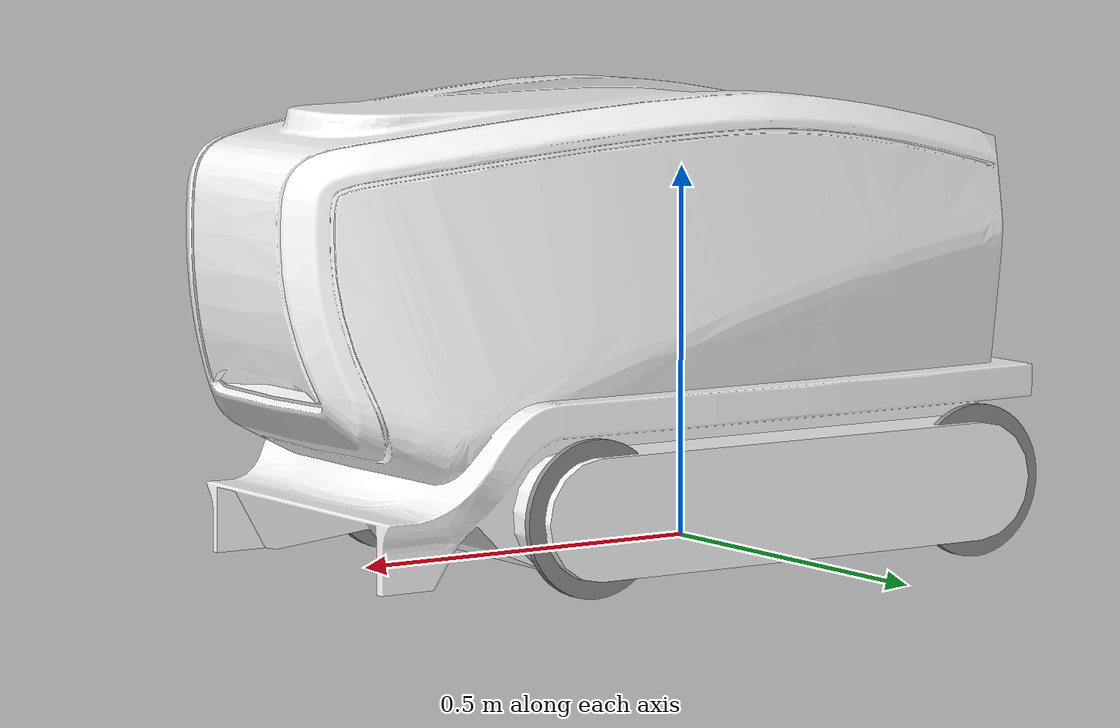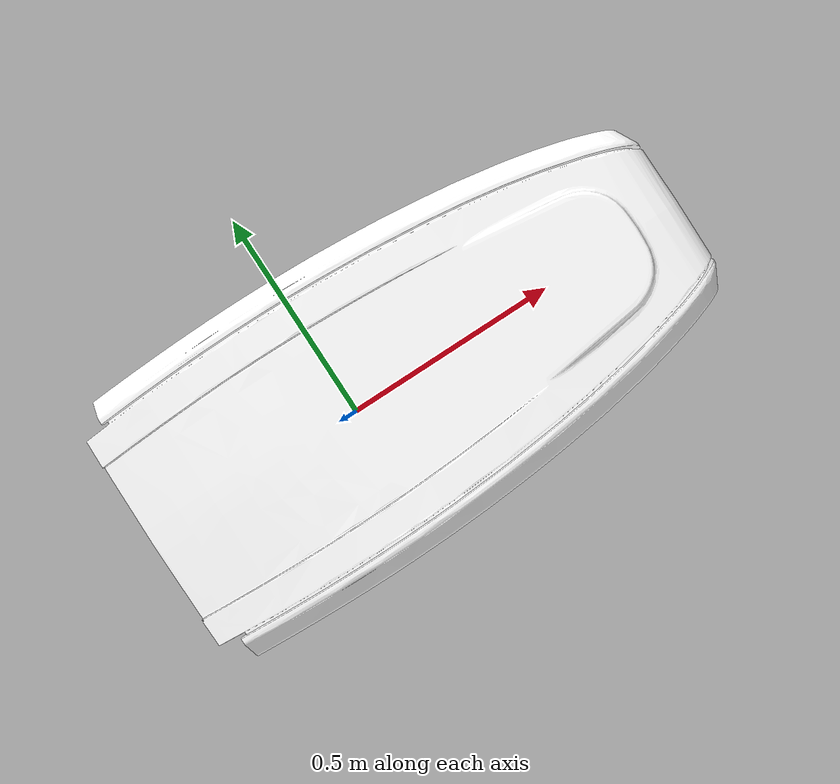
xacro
<?xml version="1.0"?>
<robot xmlns:xacro="http://www.ros.org/wiki/xacro">

  <!-- Включение файла с параметрами роликов -->
  <xacro:include filename="roller_params.xacro" />

  <link name="base_footprint"/>

  <!-- Базовое звено -->
  <link name="base_link">
    <inertial>
      <origin xyz="0.109332549621884 -3.99444698804471E-06 0.303288060337734" rpy="0 0 0"/>
      <mass value="7.5"/>
      <inertia ixx="13.4992891087176" ixy="0.000473313057343369" ixz="-1.40847406797442"
               iyy="29.2623362046841" iyz="0.00234656617180413" izz="27.4848319406113"/>
    </inertial>
    <visual>
      <origin xyz="0 0 0" rpy="0 0 0"/>
      <geometry>
        <mesh filename="file://$(find asump_description)/meshes/base_link.STL"/>
      </geometry>
      <material name=""><color rgba="1 1 1 1"/></material>
    </visual>
    <collision>
      <origin xyz="0 0 0" rpy="0 0 0"/>
      <geometry>
        <mesh filename="file://$(find asump_description)/meshes/base_link.STL"/>
      </geometry>
    </collision>
  </link>

  <joint name="base_joint" type="fixed">
    <origin xyz="0 0 0" rpy="0 0 0"/>
    <parent link="base_footprint"/>
    <child link="base_link"/>
    <axis xyz="0 0 0"/>
  </joint>

  <link name="balance_link">
    <inertial>
      <origin xyz="0 0 0" rpy="0 0 0"/>
      <mass value="3.2"/>
      <inertia ixx="13.4992891087176" ixy="0.000473313057343369" ixz="-1.40847406797442"
               iyy="29.2623362046841" iyz="0.00234656617180413" izz="27.4848319406113"/>
    </inertial>
  </link>

  <joint name="balance_joint" type="fixed">
    <origin xyz="0 0 0.25" rpy="0 0 0"/>
    <parent link="base_link"/>
    <child link="balance_link"/>
    <axis xyz="0 0 0"/>
  </joint>

  <!-- Траки -->

  <!-- Ролики -->
  <xacro:roller name="fl" x="0.30749" y="0.25132" z="0.079492" axis_x="0" axis_y="1" axis_z="0"/>
  <xacro:roller name="fr" x="0.30749" y="-0.25132" z="0.079492" axis_x="0" axis_y="1" axis_z="0"/>
  <xacro:roller name="rl" x="-0.30675" y="0.25132" z="0.079492" axis_x="0" axis_y="1" axis_z="0"/>
  <xacro:roller name="rr" x="-0.30675" y="-0.25132" z="0.079492" axis_x="0" axis_y="1" axis_z="0"/>

</robot>

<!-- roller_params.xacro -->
<robot xmlns:xacro="http://www.ros.org/wiki/xacro">

  <!-- Макрос для создания ролика -->
  <xacro:macro name="roller" params="name x y z axis_x axis_y axis_z">
    <link name="${name}_roller">
      <inertial>
        <origin xyz="0 -0.01 0" rpy="0 0 0"/>
        <mass value="1.2"/>
        <inertia ixx="0.00179016454216459" ixy="1.32679515530007E-36" ixz="1.04242882131926E-50"
                 iyy="0.00353589020904659" iyz="-3.27203986802643E-19" izz="0.00179016454216458"/>
      </inertial>
      <visual>
        <origin xyz="0 0 0" rpy="0 0 0"/>
        <geometry>
          <mesh filename="file://$(find asump_description)/meshes/${name}_roller.STL" scale="1 0.5 1"/>
        </geometry>
        <material name=""><color rgba="0.564705882352941 0.564705882352941 0.564705882352941 1"/></material>
      </visual>
      <collision>
        <origin xyz="0 0 0" rpy="0 0 0"/>
        <geometry>
          <mesh filename="file://$(find asump_description)/meshes/${name}_roller.STL" scale="1 0.5 1"/>
        </geometry>
      </collision>
    </link>

    <joint name="${name}_joint" type="continuous">
      <origin xyz="${x} ${y} ${z}" rpy="0 0 0"/>
      <parent link="base_link"/>
      <child link="${name}_roller"/>
      <axis xyz="${axis_x} ${axis_y} ${axis_z}"/>
      <limit effort="25000" velocity="100"/>
      <dynamics friction="0.2"/>
    </joint>

    <gazebo reference="${name}_roller">

      <!-- Настройки трения с поверхностью -->
      <mu1>0.4</mu1>        <!-- Коэффициент трения в продольном направлении -->
      <mu2>0.1</mu2>        <!-- Коэффициент трения в поперечном направлении -->
      <kp>1e5</kp>          <!-- Коэффициент жесткости контакта -->
      <kd>1e3</kd>          <!-- Коэффициент демпфирования контакта -->

    </gazebo>
  </xacro:macro>
</robot>
